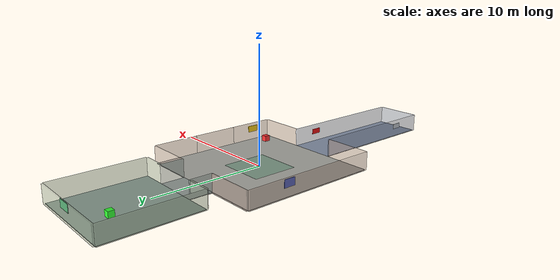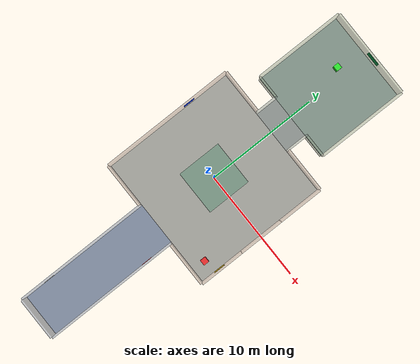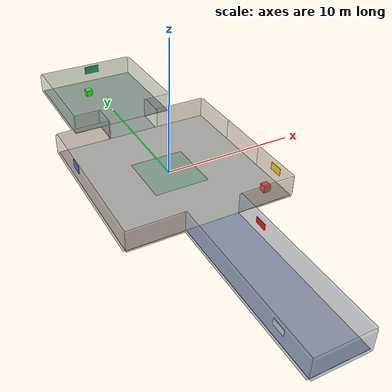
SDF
<sdf version="1.6">
 <world name="k12_indoor">
  <gravity>0 0 -9.81</gravity>
  <magnetic_field>6e-06 2.3e-05 -4.2e-05</magnetic_field>
  <atmosphere type="adiabatic"/>
  <plugin name="gazebo_ros_state" filename="libgazebo_ros_state.so">
   <ros><namespace>/gazebo</namespace></ros>
   <update_rate>10.0</update_rate>
  </plugin>
  <scene>
   <ambient>0.72 0.72 0.72 1</ambient>
   <background>0.86 0.90 0.94 1</background>
   <shadows>false</shadows>
   <grid>false</grid>
  </scene>
  <physics name="ode_nav2_depth_camera" default="1" type="ode">
   <max_step_size>0.004</max_step_size>
   <real_time_factor>1.0</real_time_factor>
   <real_time_update_rate>250</real_time_update_rate>
   <ode>
    <solver><type>quick</type><iters>50</iters><sor>1.3</sor></solver>
    <constraints>
     <cfm>0.0</cfm>
     <erp>0.2</erp>
     <contact_max_correcting_vel>80.0</contact_max_correcting_vel>
     <contact_surface_layer>0.001</contact_surface_layer>
    </constraints>
   </ode>
  </physics>
  <light name="white_directional_fill" type="directional">
   <pose>0 0 10 0 0 0</pose>
   <diffuse>0.80 0.80 0.80 1</diffuse>
   <specular>0.10 0.10 0.10 1</specular>
   <direction>-0.35 0.25 -1.0</direction>
   <cast_shadows>false</cast_shadows>
  </light>
  <light name="lobby_white_fill" type="point">
   <pose>0 0 4.0 0 0 0</pose>
   <diffuse>0.65 0.65 0.65 1</diffuse>
   <specular>0.05 0.05 0.05 1</specular>
   <attenuation>
    <range>24</range>
    <constant>0.6</constant>
    <linear>0.02</linear>
    <quadratic>0.002</quadratic>
   </attenuation>
   <cast_shadows>false</cast_shadows>
  </light>
  <light name="north_rooms_white_fill" type="point">
   <pose>5 11 4.0 0 0 0</pose>
   <diffuse>0.58 0.58 0.58 1</diffuse>
   <specular>0.05 0.05 0.05 1</specular>
   <attenuation>
    <range>22</range>
    <constant>0.6</constant>
    <linear>0.025</linear>
    <quadratic>0.002</quadratic>
   </attenuation>
   <cast_shadows>false</cast_shadows>
  </light>
  <light name="south_rooms_white_fill" type="point">
   <pose>5 -12 4.0 0 0 0</pose>
   <diffuse>0.58 0.58 0.58 1</diffuse>
   <specular>0.05 0.05 0.05 1</specular>
   <attenuation>
    <range>24</range>
    <constant>0.6</constant>
    <linear>0.025</linear>
    <quadratic>0.002</quadratic>
   </attenuation>
   <cast_shadows>false</cast_shadows>
  </light>
  <model name="floor_network_high_friction">
   <static>true</static>
   <link name="floor_link">
    <collision name="floor_lobby_col">
     <pose>0 0 -0.02 0 0 0</pose>
     <geometry><box><size>12 12 0.04</size></box></geometry>
     <surface>
      <friction><ode><mu>1.4</mu><mu2>1.2</mu2><slip1>0.0</slip1><slip2>0.0</slip2></ode></friction>
      <contact><ode><kp>100000</kp><kd>1.0</kd><max_vel>0.1</max_vel><min_depth>0.001</min_depth></ode></contact>
     </surface>
    </collision>
    <visual name="floor_lobby_vis">
     <pose>0 0 -0.02 0 0 0</pose>
     <geometry><box><size>12 12 0.04</size></box></geometry>
     <material><ambient>0.58 0.58 0.56 1</ambient><diffuse>0.70 0.70 0.67 1</diffuse></material>
    </visual>
    <collision name="floor_office_col">
     <pose>0 12 -0.02 0 0 0</pose>
     <geometry><box><size>8 8 0.04</size></box></geometry>
     <surface>
      <friction><ode><mu>1.4</mu><mu2>1.2</mu2><slip1>0.0</slip1><slip2>0.0</slip2></ode></friction>
      <contact><ode><kp>100000</kp><kd>1.0</kd><max_vel>0.1</max_vel><min_depth>0.001</min_depth></ode></contact>
     </surface>
    </collision>
    <visual name="floor_office_vis">
     <pose>0 12 -0.02 0 0 0</pose>
     <geometry><box><size>8 8 0.04</size></box></geometry>
     <material><ambient>0.45 0.52 0.48 1</ambient><diffuse>0.56 0.64 0.59 1</diffuse></material>
    </visual>
    <collision name="floor_corridor_office_col">
     <pose>0 7 -0.02 0 0 0</pose>
     <geometry><box><size>3.8 2.0 0.04</size></box></geometry>
     <surface>
      <friction><ode><mu>1.4</mu><mu2>1.2</mu2><slip1>0.0</slip1><slip2>0.0</slip2></ode></friction>
      <contact><ode><kp>100000</kp><kd>1.0</kd><max_vel>0.1</max_vel><min_depth>0.001</min_depth></ode></contact>
     </surface>
    </collision>
    <visual name="floor_corridor_office_vis">
     <pose>0 7 -0.018 0 0 0</pose>
     <geometry><box><size>3.8 2.0 0.036</size></box></geometry>
     <material><ambient>0.49 0.52 0.50 1</ambient><diffuse>0.61 0.64 0.62 1</diffuse></material>
    </visual>
    <collision name="floor_corridor_semantic_col">
     <pose>0 -12 -0.02 0 0 0</pose>
     <geometry><box><size>3.8 12 0.04</size></box></geometry>
     <surface>
      <friction><ode><mu>1.4</mu><mu2>1.2</mu2><slip1>0.0</slip1><slip2>0.0</slip2></ode></friction>
      <contact><ode><kp>100000</kp><kd>1.0</kd><max_vel>0.1</max_vel><min_depth>0.001</min_depth></ode></contact>
     </surface>
    </collision>
    <visual name="floor_corridor_semantic_vis">
     <pose>0 -12 -0.018 0 0 0</pose>
     <geometry><box><size>3.8 12 0.036</size></box></geometry>
     <material><ambient>0.44 0.48 0.55 1</ambient><diffuse>0.55 0.60 0.69 1</diffuse></material>
    </visual>
   </link>
  </model>
  <model name="robot_spawn_clear_area_reference">
   <static>true</static>
   <link name="spawn_reference_link">
    <visual name="spawn_area_vis">
     <pose>0 0 0.003 0 0 0</pose>
     <geometry><box><size>4 4 0.006</size></box></geometry>
     <material><ambient>0.12 0.55 0.35 0.28</ambient><diffuse>0.12 0.55 0.35 0.28</diffuse></material>
     <transparency>0.72</transparency>
     <cast_shadows>false</cast_shadows>
    </visual>
   </link>
  </model>
  <model name="transparent_low_walls_merged">
   <static>true</static>
   <link name="walls_link">
    <collision name="wall_lobby_west_col">
     <pose>-6.075 0 0.75 0 0 0</pose>
     <geometry><box><size>0.15 12 1.5</size></box></geometry>
    </collision>
    <visual name="wall_lobby_west_vis">
     <pose>-6.075 0 0.75 0 0 0</pose>
     <geometry><box><size>0.15 12 1.5</size></box></geometry>
     <material><ambient>0.58 0.50 0.46 1</ambient><diffuse>0.72 0.62 0.56 1</diffuse></material>
     <transparency>0.5</transparency>
     <cast_shadows>false</cast_shadows>
    </visual>
    <collision name="wall_lobby_east_north_col">
     <pose>6.075 4 0.75 0 0 0</pose>
     <geometry><box><size>0.15 4 1.5</size></box></geometry>
    </collision>
    <visual name="wall_lobby_east_north_vis">
     <pose>6.075 4 0.75 0 0 0</pose>
     <geometry><box><size>0.15 4 1.5</size></box></geometry>
     <material><ambient>0.58 0.50 0.46 1</ambient><diffuse>0.72 0.62 0.56 1</diffuse></material>
     <transparency>0.5</transparency>
     <cast_shadows>false</cast_shadows>
    </visual>
    <collision name="wall_lobby_east_center_col">
     <pose>6.075 0 0.75 0 0 0</pose>
     <geometry><box><size>0.15 4 1.5</size></box></geometry>
    </collision>
    <visual name="wall_lobby_east_center_vis">
     <pose>6.075 0 0.75 0 0 0</pose>
     <geometry><box><size>0.15 4 1.5</size></box></geometry>
     <material><ambient>0.58 0.50 0.46 1</ambient><diffuse>0.72 0.62 0.56 1</diffuse></material>
     <transparency>0.5</transparency>
     <cast_shadows>false</cast_shadows>
    </visual>
    <collision name="wall_lobby_east_south_col">
     <pose>6.075 -4 0.75 0 0 0</pose>
     <geometry><box><size>0.15 4 1.5</size></box></geometry>
    </collision>
    <visual name="wall_lobby_east_south_vis">
     <pose>6.075 -4 0.75 0 0 0</pose>
     <geometry><box><size>0.15 4 1.5</size></box></geometry>
     <material><ambient>0.58 0.50 0.46 1</ambient><diffuse>0.72 0.62 0.56 1</diffuse></material>
     <transparency>0.5</transparency>
     <cast_shadows>false</cast_shadows>
    </visual>
    <collision name="wall_lobby_north_left_col">
     <pose>-4 6.075 0.75 0 0 0</pose>
     <geometry><box><size>4 0.15 1.5</size></box></geometry>
    </collision>
    <visual name="wall_lobby_north_left_vis">
     <pose>-4 6.075 0.75 0 0 0</pose>
     <geometry><box><size>4 0.15 1.5</size></box></geometry>
     <material><ambient>0.58 0.50 0.46 1</ambient><diffuse>0.72 0.62 0.56 1</diffuse></material>
     <transparency>0.5</transparency>
     <cast_shadows>false</cast_shadows>
    </visual>
    <collision name="wall_lobby_north_right_col">
     <pose>4 6.075 0.75 0 0 0</pose>
     <geometry><box><size>4 0.15 1.5</size></box></geometry>
    </collision>
    <visual name="wall_lobby_north_right_vis">
     <pose>4 6.075 0.75 0 0 0</pose>
     <geometry><box><size>4 0.15 1.5</size></box></geometry>
     <material><ambient>0.58 0.50 0.46 1</ambient><diffuse>0.72 0.62 0.56 1</diffuse></material>
     <transparency>0.5</transparency>
     <cast_shadows>false</cast_shadows>
    </visual>
    <collision name="wall_lobby_south_left_col">
     <pose>-4 -6.075 0.75 0 0 0</pose>
     <geometry><box><size>4 0.15 1.5</size></box></geometry>
    </collision>
    <visual name="wall_lobby_south_left_vis">
     <pose>-4 -6.075 0.75 0 0 0</pose>
     <geometry><box><size>4 0.15 1.5</size></box></geometry>
     <material><ambient>0.58 0.50 0.46 1</ambient><diffuse>0.72 0.62 0.56 1</diffuse></material>
     <transparency>0.5</transparency>
     <cast_shadows>false</cast_shadows>
    </visual>
    <collision name="wall_lobby_south_right_col">
     <pose>4 -6.075 0.75 0 0 0</pose>
     <geometry><box><size>4 0.15 1.5</size></box></geometry>
    </collision>
    <visual name="wall_lobby_south_right_vis">
     <pose>4 -6.075 0.75 0 0 0</pose>
     <geometry><box><size>4 0.15 1.5</size></box></geometry>
     <material><ambient>0.58 0.50 0.46 1</ambient><diffuse>0.72 0.62 0.56 1</diffuse></material>
     <transparency>0.5</transparency>
     <cast_shadows>false</cast_shadows>
    </visual>
    <collision name="wall_office_west_col">
     <pose>-4.075 12 0.75 0 0 0</pose>
     <geometry><box><size>0.15 8 1.5</size></box></geometry>
    </collision>
    <visual name="wall_office_west_vis">
     <pose>-4.075 12 0.75 0 0 0</pose>
     <geometry><box><size>0.15 8 1.5</size></box></geometry>
     <material><ambient>0.53 0.58 0.50 1</ambient><diffuse>0.66 0.72 0.62 1</diffuse></material>
     <transparency>0.5</transparency>
     <cast_shadows>false</cast_shadows>
    </visual>
    <collision name="wall_office_east_col">
     <pose>4.075 12 0.75 0 0 0</pose>
     <geometry><box><size>0.15 8 1.5</size></box></geometry>
    </collision>
    <visual name="wall_office_east_vis">
     <pose>4.075 12 0.75 0 0 0</pose>
     <geometry><box><size>0.15 8 1.5</size></box></geometry>
     <material><ambient>0.53 0.58 0.50 1</ambient><diffuse>0.66 0.72 0.62 1</diffuse></material>
     <transparency>0.5</transparency>
     <cast_shadows>false</cast_shadows>
    </visual>
    <collision name="wall_office_north_col">
     <pose>0 16.075 0.75 0 0 0</pose>
     <geometry><box><size>8 0.15 1.5</size></box></geometry>
    </collision>
    <visual name="wall_office_north_vis">
     <pose>0 16.075 0.75 0 0 0</pose>
     <geometry><box><size>8 0.15 1.5</size></box></geometry>
     <material><ambient>0.53 0.58 0.50 1</ambient><diffuse>0.66 0.72 0.62 1</diffuse></material>
     <transparency>0.5</transparency>
     <cast_shadows>false</cast_shadows>
    </visual>
    <collision name="wall_office_south_left_col">
     <pose>-3 7.925 0.75 0 0 0</pose>
     <geometry><box><size>2 0.15 1.5</size></box></geometry>
    </collision>
    <visual name="wall_office_south_left_vis">
     <pose>-3 7.925 0.75 0 0 0</pose>
     <geometry><box><size>2 0.15 1.5</size></box></geometry>
     <material><ambient>0.53 0.58 0.50 1</ambient><diffuse>0.66 0.72 0.62 1</diffuse></material>
     <transparency>0.5</transparency>
     <cast_shadows>false</cast_shadows>
    </visual>
    <collision name="wall_office_south_right_col">
     <pose>3 7.925 0.75 0 0 0</pose>
     <geometry><box><size>2 0.15 1.5</size></box></geometry>
    </collision>
    <visual name="wall_office_south_right_vis">
     <pose>3 7.925 0.75 0 0 0</pose>
     <geometry><box><size>2 0.15 1.5</size></box></geometry>
     <material><ambient>0.53 0.58 0.50 1</ambient><diffuse>0.66 0.72 0.62 1</diffuse></material>
     <transparency>0.5</transparency>
     <cast_shadows>false</cast_shadows>
    </visual>
    <collision name="wall_corridor_office_west_col">
     <pose>-1.975 7 0.75 0 0 0</pose>
     <geometry><box><size>0.15 2 1.5</size></box></geometry>
    </collision>
    <visual name="wall_corridor_office_west_vis">
     <pose>-1.975 7 0.75 0 0 0</pose>
     <geometry><box><size>0.15 2 1.5</size></box></geometry>
     <material><ambient>0.48 0.52 0.50 1</ambient><diffuse>0.60 0.65 0.62 1</diffuse></material>
     <transparency>0.5</transparency>
     <cast_shadows>false</cast_shadows>
    </visual>
    <collision name="wall_corridor_office_east_col">
     <pose>1.975 7 0.75 0 0 0</pose>
     <geometry><box><size>0.15 2 1.5</size></box></geometry>
    </collision>
    <visual name="wall_corridor_office_east_vis">
     <pose>1.975 7 0.75 0 0 0</pose>
     <geometry><box><size>0.15 2 1.5</size></box></geometry>
     <material><ambient>0.48 0.52 0.50 1</ambient><diffuse>0.60 0.65 0.62 1</diffuse></material>
     <transparency>0.5</transparency>
     <cast_shadows>false</cast_shadows>
    </visual>
    <collision name="wall_corridor_semantic_west_col">
     <pose>-1.975 -12 0.75 0 0 0</pose>
     <geometry><box><size>0.15 12 1.5</size></box></geometry>
    </collision>
    <visual name="wall_corridor_semantic_west_vis">
     <pose>-1.975 -12 0.75 0 0 0</pose>
     <geometry><box><size>0.15 12 1.5</size></box></geometry>
     <material><ambient>0.45 0.49 0.56 1</ambient><diffuse>0.56 0.61 0.70 1</diffuse></material>
     <transparency>0.5</transparency>
     <cast_shadows>false</cast_shadows>
    </visual>
    <collision name="wall_corridor_semantic_east_col">
     <pose>1.975 -12 0.75 0 0 0</pose>
     <geometry><box><size>0.15 12 1.5</size></box></geometry>
    </collision>
    <visual name="wall_corridor_semantic_east_vis">
     <pose>1.975 -12 0.75 0 0 0</pose>
     <geometry><box><size>0.15 12 1.5</size></box></geometry>
     <material><ambient>0.45 0.49 0.56 1</ambient><diffuse>0.56 0.61 0.70 1</diffuse></material>
     <transparency>0.5</transparency>
     <cast_shadows>false</cast_shadows>
    </visual>
    <collision name="wall_corridor_semantic_south_col">
     <pose>0 -18.075 0.75 0 0 0</pose>
     <geometry><box><size>3.8 0.15 1.5</size></box></geometry>
    </collision>
    <visual name="wall_corridor_semantic_south_vis">
     <pose>0 -18.075 0.75 0 0 0</pose>
     <geometry><box><size>3.8 0.15 1.5</size></box></geometry>
     <material><ambient>0.45 0.49 0.56 1</ambient><diffuse>0.56 0.61 0.70 1</diffuse></material>
     <transparency>0.5</transparency>
     <cast_shadows>false</cast_shadows>
    </visual>
   </link>
  </model>
  <model name="semantic_furniture_and_obstacles"><static>true</static><link name="objects_link"/></model>
  <model name="obstacle_red_box_lobby">
   <static>true</static>
   <pose>4.8 -4.8 0.25 0 0 0</pose>
   <link name="box_link">
    <collision name="red_box_collision"><geometry><box><size>0.5 0.5 0.5</size></box></geometry></collision>
    <visual name="red_box_visual">
     <geometry><box><size>0.5 0.5 0.5</size></box></geometry>
     <material><ambient>0.8 0.1 0.1 1</ambient><diffuse>1.0 0.2 0.2 1</diffuse></material>
    </visual>
   </link>
  </model>
  <model name="obstacle_green_box_office">
   <static>true</static>
   <pose>-0.8 13.5 0.25 0 0 0</pose>
   <link name="box_link">
    <collision name="green_box_collision"><geometry><box><size>0.5 0.5 0.5</size></box></geometry></collision>
    <visual name="green_box_visual">
     <geometry><box><size>0.5 0.5 0.5</size></box></geometry>
     <material><ambient>0.1 0.6 0.1 1</ambient><diffuse>0.2 1.0 0.2 1</diffuse></material>
    </visual>
   </link>
  </model>
  <model name="visual_semantic_landmarks">
   <static>true</static>
   <link name="landmarks_link">
    <visual name="poster_lobby_blue_vis">
     <pose>-5.98 2.2 1.05 0 0 0</pose>
     <geometry><box><size>0.03 1.0 0.65</size></box></geometry>
     <material><ambient>0.04 0.16 0.68 1</ambient><diffuse>0.05 0.22 0.92 1</diffuse></material>
     <cast_shadows>false</cast_shadows>
    </visual>
    <visual name="poster_lobby_yellow_vis">
     <pose>5.98 -4.2 1.00 0 0 0</pose>
     <geometry><box><size>0.03 1.0 0.55</size></box></geometry>
     <material><ambient>0.72 0.58 0.06 1</ambient><diffuse>0.95 0.78 0.08 1</diffuse></material>
     <cast_shadows>false</cast_shadows>
    </visual>
    <visual name="poster_office_green_vis">
     <pose>0.5 15.98 1.05 0 0 0</pose>
     <geometry><box><size>1.25 0.03 0.65</size></box></geometry>
     <material><ambient>0.06 0.48 0.24 1</ambient><diffuse>0.08 0.68 0.34 1</diffuse></material>
     <cast_shadows>false</cast_shadows>
    </visual>
    <visual name="semantic_corridor_stripe_red_vis">
     <pose>1.88 -8.4 0.9 0 0 0</pose>
     <geometry><box><size>0.025 0.9 0.45</size></box></geometry>
     <material><ambient>0.66 0.04 0.04 1</ambient><diffuse>0.90 0.06 0.06 1</diffuse></material>
     <cast_shadows>false</cast_shadows>
    </visual>
    <visual name="semantic_corridor_stripe_white_vis">
     <pose>-1.88 -15.4 0.9 0 0 0</pose>
     <geometry><box><size>0.025 0.9 0.45</size></box></geometry>
     <material><ambient>0.82 0.82 0.78 1</ambient><diffuse>0.96 0.96 0.92 1</diffuse></material>
     <cast_shadows>false</cast_shadows>
    </visual>
   </link>
  </model>
 </world>
</sdf>
